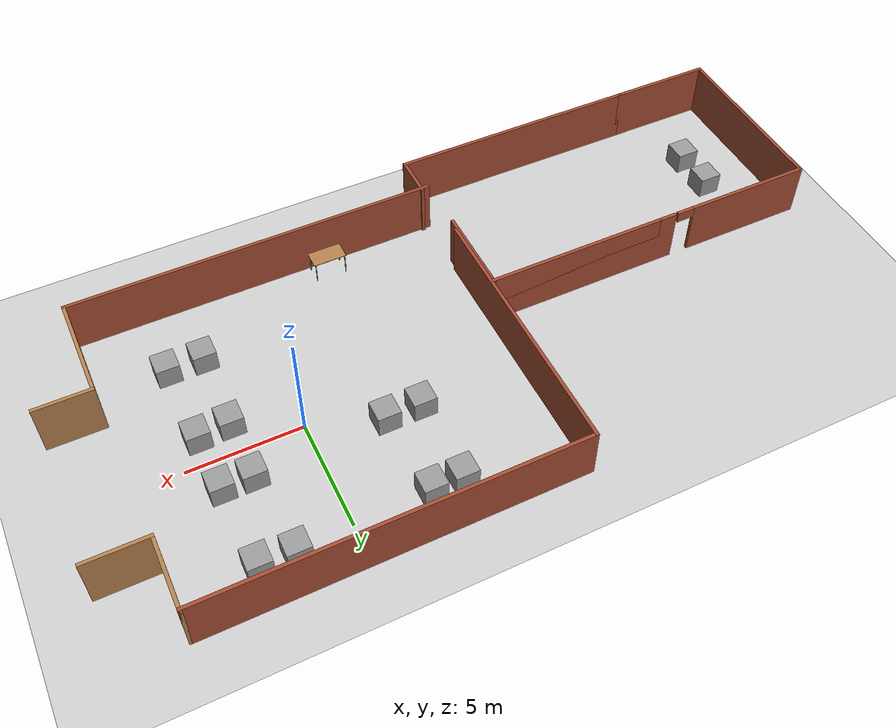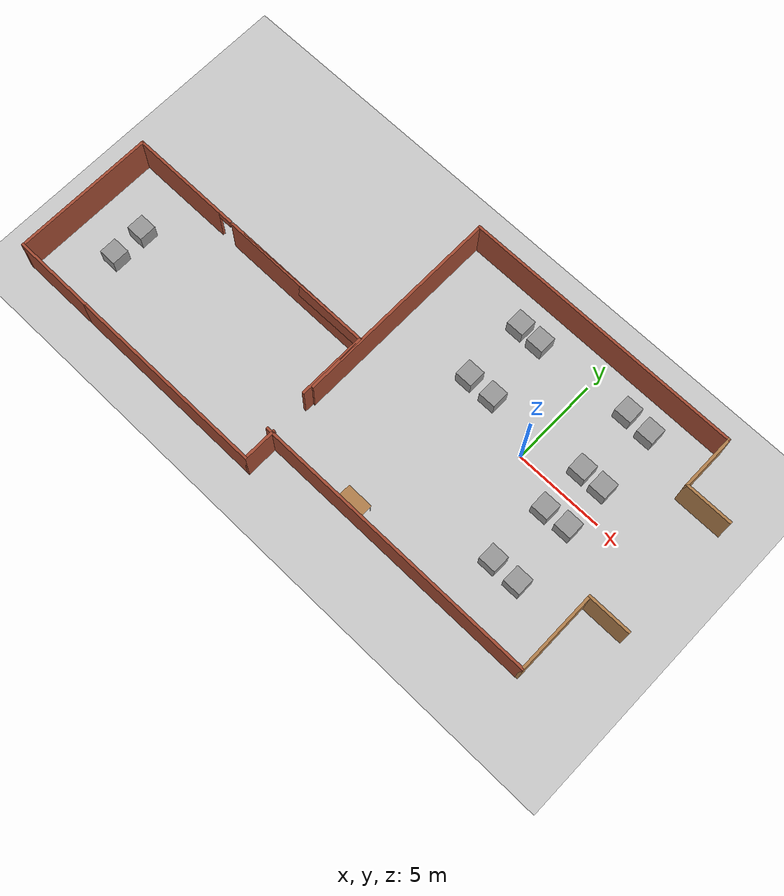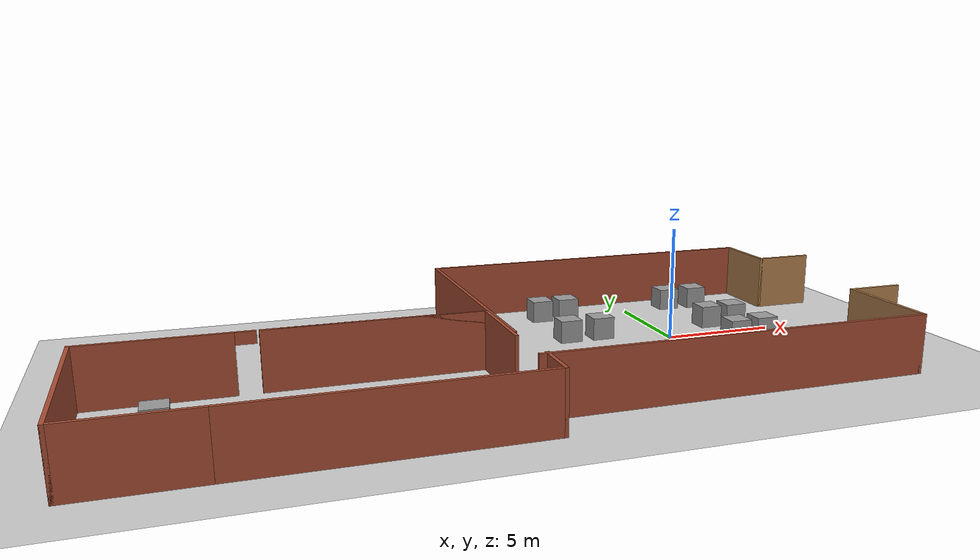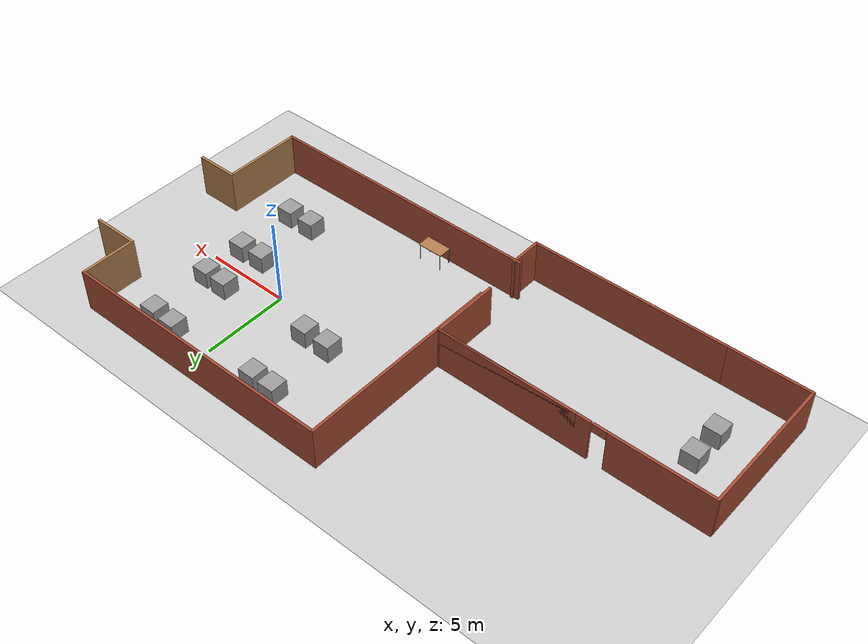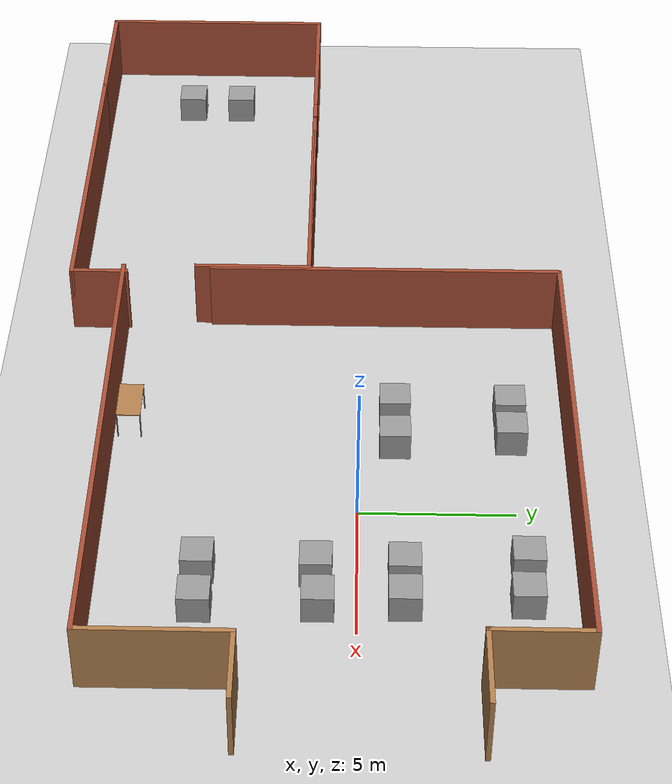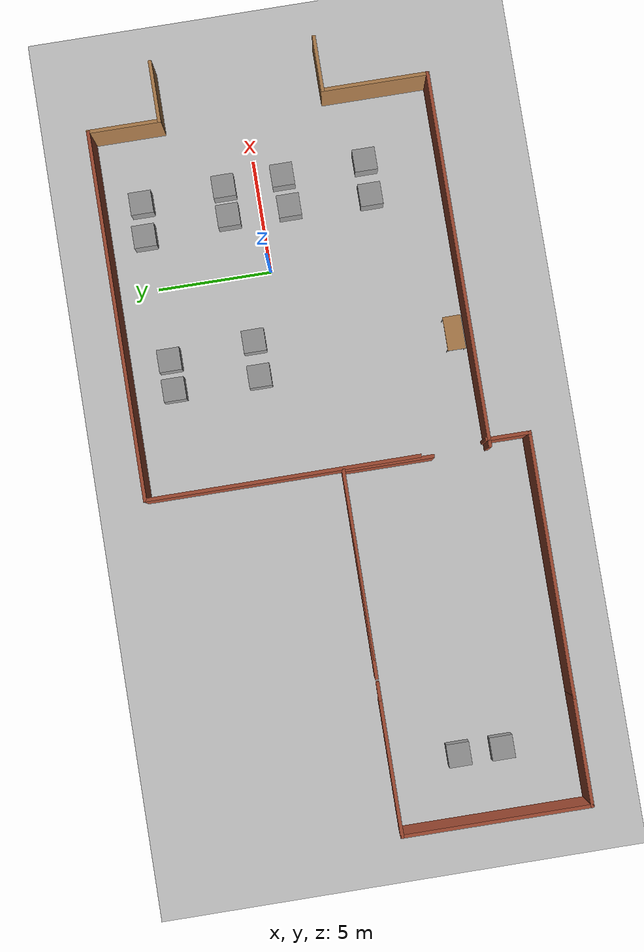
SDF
<sdf version="1.7">
 <world name="default">
  <light name="sun" type="directional">
   <pose>0 0 10 0 -0 0</pose>
   <diffuse>0.8 0.8 0.8 1</diffuse>
   <specular>0.2 0.2 0.2 1</specular>
   <attenuation>
    <range>1000</range>
    <constant>0.9</constant>
    <linear>0.01</linear>
    <quadratic>0.001</quadratic>
   </attenuation>
   <direction>-0.5 0.1 -0.9</direction>
   <spot><inner_angle>0</inner_angle><outer_angle>0</outer_angle><falloff>0</falloff></spot>
  </light>
  <model name="ground_plane">
   <static>1</static>
   <link name="link">
    <collision name="collision">
     <geometry><plane><normal>0 0 1</normal><size>100 100</size></plane></geometry>
     <surface>
      <contact><collide_bitmask>65535</collide_bitmask></contact>
      <friction><ode><mu>100</mu><mu2>50</mu2></ode></friction>
     </surface>
    </collision>
    <visual name="visual">
     <cast_shadows>0</cast_shadows>
     <geometry><plane><normal>0 0 1</normal><size>100 100</size></plane></geometry>
     <material>
      <script><uri>file://media/materials/scripts/gazebo.material</uri><name>Gazebo/Grey</name></script>
     </material>
    </visual>
   </link>
  </model>
  <gravity>0 0 -9.8</gravity>
  <magnetic_field>6e-06 2.3e-05 -4.2e-05</magnetic_field>
  <atmosphere type="adiabatic"/>
  <physics type="ode">
   <max_step_size>0.001</max_step_size>
   <real_time_factor>1</real_time_factor>
   <real_time_update_rate>1000</real_time_update_rate>
  </physics>
  <scene><ambient>0.4 0.4 0.4 1</ambient><background>0.7 0.7 0.7 1</background><shadows>1</shadows></scene>
  <audio><device>default</device></audio>
  <spherical_coordinates>
   <surface_model>EARTH_WGS84</surface_model>
   <latitude_deg>0</latitude_deg>
   <longitude_deg>0</longitude_deg>
   <elevation>0</elevation>
   <heading_deg>0</heading_deg>
  </spherical_coordinates>
  <model name="resturent_new">
   <pose>0.12676 -0.640966 0 0 -0 0</pose>
   <link name="Wall_24">
    <collision name="Wall_24_Collision">
     <geometry><box><size>16.5 0.15 2.5</size></box></geometry>
     <pose>0 0 1.25 0 -0 0</pose>
    </collision>
    <visual name="Wall_24_Visual">
     <pose>0 0 1.25 0 -0 0</pose>
     <geometry><box><size>16.5 0.15 2.5</size></box></geometry>
     <material>
      <script><uri>file://media/materials/scripts/gazebo.material</uri><name>Gazebo/Bricks</name></script>
      <ambient>1 1 1 1</ambient>
     </material>
     <meta><layer>0</layer></meta>
    </visual>
    <pose>-1.19813 -7.44006 0 0 -0 0</pose>
   </link>
   <link name="Wall_25">
    <collision name="Wall_25_Collision">
     <geometry><box><size>4.75 0.15 2.5</size></box></geometry>
     <pose>0 0 1.25 0 -0 0</pose>
    </collision>
    <visual name="Wall_25_Visual">
     <pose>0 0 1.25 0 -0 0</pose>
     <geometry><box><size>4.75 0.15 2.5</size></box></geometry>
     <material>
      <script><uri>file://media/materials/scripts/gazebo.material</uri><name>Gazebo/Wood</name></script>
      <ambient>1 1 1 1</ambient>
     </material>
     <meta><layer>0</layer></meta>
    </visual>
    <pose>6.97687 -5.14006 0 0 -0 1.5708</pose>
   </link>
   <link name="Wall_26">
    <collision name="Wall_26_Collision">
     <geometry><box><size>2.5 0.15 2.5</size></box></geometry>
     <pose>0 0 1.25 0 -0 0</pose>
    </collision>
    <visual name="Wall_26_Visual">
     <pose>0 0 1.25 0 -0 0</pose>
     <geometry><box><size>2.5 0.15 2.5</size></box></geometry>
     <material>
      <script><uri>file://media/materials/scripts/gazebo.material</uri><name>Gazebo/Wood</name></script>
      <ambient>1 1 1 1</ambient>
     </material>
     <meta><layer>0</layer></meta>
    </visual>
    <pose>8.15187 -2.84005 0 0 -0 0</pose>
   </link>
   <link name="Wall_28">
    <collision name="Wall_28_Collision">
     <geometry><box><size>12 0.15 2.5</size></box></geometry>
     <pose>0 0 1.25 0 -0 0</pose>
    </collision>
    <visual name="Wall_28_Visual">
     <pose>0 0 1.25 0 -0 0</pose>
     <geometry><box><size>12 0.15 2.5</size></box></geometry>
     <material>
      <script><uri>file://media/materials/scripts/gazebo.material</uri><name>Gazebo/Bricks</name></script>
      <ambient>1 1 1 1</ambient>
     </material>
     <meta><layer>0</layer></meta>
    </visual>
    <pose>-9.32687 1.51505 0 0 -0 1.5708</pose>
   </link>
   <link name="Wall_29">
    <collision name="Wall_29_Collision">
     <geometry><box><size>16.25 0.15 2.5</size></box></geometry>
     <pose>0 0 1.25 0 -0 0</pose>
    </collision>
    <visual name="Wall_29_Visual">
     <pose>0 0 1.25 0 -0 0</pose>
     <geometry><box><size>16.25 0.15 2.5</size></box></geometry>
     <material>
      <script><uri>file://media/materials/scripts/gazebo.material</uri><name>Gazebo/Bricks</name></script>
      <ambient>1 1 1 1</ambient>
     </material>
     <meta><layer>0</layer></meta>
    </visual>
    <pose>-1.27687 7.44006 0 0 -0 0</pose>
   </link>
   <link name="Wall_30">
    <collision name="Wall_30_Collision">
     <geometry><box><size>3.25 0.15 2.5</size></box></geometry>
     <pose>0 0 1.25 0 -0 0</pose>
    </collision>
    <visual name="Wall_30_Visual">
     <pose>0 0 1.25 0 -0 0</pose>
     <geometry><box><size>3.25 0.15 2.5</size></box></geometry>
     <material>
      <script><uri>file://media/materials/scripts/gazebo.material</uri><name>Gazebo/Wood</name></script>
      <ambient>1 1 1 1</ambient>
     </material>
     <meta><layer>0</layer></meta>
    </visual>
    <pose>6.77313 5.89006 0 0 -0 -1.5708</pose>
   </link>
   <link name="Wall_31">
    <collision name="Wall_31_Collision">
     <geometry><box><size>2.75 0.15 2.5</size></box></geometry>
     <pose>0 0 1.25 0 -0 0</pose>
    </collision>
    <visual name="Wall_31_Visual">
     <pose>0 0 1.25 0 -0 0</pose>
     <geometry><box><size>2.75 0.15 2.5</size></box></geometry>
     <material>
      <script><uri>file://media/materials/scripts/gazebo.material</uri><name>Gazebo/Wood</name></script>
      <ambient>1 1 1 1</ambient>
     </material>
     <meta><layer>0</layer></meta>
    </visual>
    <pose>8.07313 4.34006 0 0 -0 0</pose>
   </link>
   <static>1</static>
  </model>
  <model name="cafe_new">
   <pose>-16.9269 -5.77203 0 0 -0 3.13985</pose>
   <link name="Wall_1">
    <collision name="Wall_1_Collision">
     <geometry><box><size>2 0.15 2.5</size></box></geometry>
     <pose>0 0 1.25 0 -0 0</pose>
    </collision>
    <visual name="Wall_1_Visual">
     <pose>0 0 1.25 0 -0 0</pose>
     <geometry><box><size>2 0.15 2.5</size></box></geometry>
     <material>
      <script><uri>file://media/materials/scripts/gazebo.material</uri><name>Gazebo/Bricks</name></script>
      <ambient>1 1 1 1</ambient>
     </material>
     <meta><layer>0</layer></meta>
    </visual>
    <pose>-7.975 3.125 0 0 -0 1.5708</pose>
   </link>
   <link name="Wall_2">
    <collision name="Wall_2_Collision">
     <geometry><box><size>11.5 0.15 2.5</size></box></geometry>
     <pose>0 0 1.25 0 -0 0</pose>
    </collision>
    <visual name="Wall_2_Visual">
     <pose>0 0 1.25 0 -0 0</pose>
     <geometry><box><size>11.5 0.15 2.5</size></box></geometry>
     <material>
      <script><uri>file://media/materials/scripts/gazebo.material</uri><name>Gazebo/Bricks</name></script>
      <ambient>1 1 1 1</ambient>
     </material>
     <meta><layer>0</layer></meta>
    </visual>
    <pose>-2.3 4.05 0 0 -0 0</pose>
   </link>
   <link name="Wall_3">
    <collision name="Wall_3_Collision">
     <geometry><box><size>4.75 0.15 2.5</size></box></geometry>
     <pose>0 0 1.25 0 -0 0</pose>
    </collision>
    <visual name="Wall_3_Visual">
     <pose>0 0 1.25 0 -0 0</pose>
     <geometry><box><size>4.75 0.15 2.5</size></box></geometry>
     <material>
      <script><uri>file://media/materials/scripts/gazebo.material</uri><name>Gazebo/Bricks</name></script>
      <ambient>1 1 1 1</ambient>
     </material>
     <meta><layer>0</layer></meta>
    </visual>
    <pose>5.675 4.05 0 0 -0 0</pose>
   </link>
   <link name="Wall_4">
    <collision name="Wall_4_Collision">
     <geometry><box><size>8.25 0.15 2.5</size></box></geometry>
     <pose>0 0 1.25 0 -0 0</pose>
    </collision>
    <visual name="Wall_4_Visual">
     <pose>0 0 1.25 0 -0 0</pose>
     <geometry><box><size>8.25 0.15 2.5</size></box></geometry>
     <material>
      <script><uri>file://media/materials/scripts/gazebo.material</uri><name>Gazebo/Bricks</name></script>
      <ambient>1 1 1 1</ambient>
     </material>
     <meta><layer>0</layer></meta>
    </visual>
    <pose>7.975 -0 0 0 -0 -1.5708</pose>
   </link>
   <link name="Wall_5">
    <pose>0.175 -4.05 0 0 -0 3.14159</pose>
    <visual name="Wall_5_Visual_0">
     <pose>-4.96927 0 1.25 0 -0 0</pose>
     <geometry><box><size>5.81146 0.15 2.5</size></box></geometry>
     <material>
      <script><uri>file://media/materials/scripts/gazebo.material</uri><name>Gazebo/Bricks</name></script>
      <ambient>1 1 1 1</ambient>
     </material>
     <meta><layer>0</layer></meta>
    </visual>
    <collision name="Wall_5_Collision_0">
     <geometry><box><size>5.81146 0.15 2.5</size></box></geometry>
     <pose>-4.96927 0 1.25 0 -0 0</pose>
    </collision>
    <visual name="Wall_5_Visual_1">
     <pose>3.35573 0 1.25 0 -0 0</pose>
     <geometry><box><size>9.03854 0.15 2.5</size></box></geometry>
     <material>
      <script><uri>file://media/materials/scripts/gazebo.material</uri><name>Gazebo/Bricks</name></script>
      <ambient>1 1 1 1</ambient>
     </material>
     <meta><layer>0</layer></meta>
    </visual>
    <collision name="Wall_5_Collision_1">
     <geometry><box><size>9.03854 0.15 2.5</size></box></geometry>
     <pose>3.35573 0 1.25 0 -0 0</pose>
    </collision>
    <visual name="Wall_5_Visual_2">
     <pose>3.76029 0 1.25 0 -0 0</pose>
     <geometry><box><size>8.22943 0.15 2.5</size></box></geometry>
     <material>
      <script><uri>file://media/materials/scripts/gazebo.material</uri><name>Gazebo/Bricks</name></script>
      <ambient>1 1 1 1</ambient>
     </material>
     <meta><layer>0</layer></meta>
    </visual>
    <collision name="Wall_5_Collision_2">
     <geometry><box><size>8.22943 0.15 2.5</size></box></geometry>
     <pose>3.76029 0 1.25 0 -0 0</pose>
    </collision>
    <visual name="Wall_5_Visual_3">
     <pose>-1.65898 0 2.25 0 -0 0</pose>
     <geometry><box><size>0.809112 0.15 0.5</size></box></geometry>
     <material>
      <script><uri>file://media/materials/scripts/gazebo.material</uri><name>Gazebo/Bricks</name></script>
      <ambient>1 1 1 1</ambient>
     </material>
     <meta><layer>0</layer></meta>
    </visual>
    <collision name="Wall_5_Collision_3">
     <geometry><box><size>0.809112 0.15 0.5</size></box></geometry>
     <pose>-1.65898 0 2.25 0 -0 0</pose>
    </collision>
   </link>
   <link name="Wall_6">
    <collision name="Wall_6_Collision">
     <geometry><box><size>4 0.15 2.5</size></box></geometry>
     <pose>0 0 1.25 0 -0 0</pose>
    </collision>
    <visual name="Wall_6_Visual">
     <pose>0 0 1.25 0 -0 0</pose>
     <geometry><box><size>4 0.15 2.5</size></box></geometry>
     <material>
      <script><uri>file://media/materials/scripts/gazebo.material</uri><name>Gazebo/Bricks</name></script>
      <ambient>1 1 1 1</ambient>
     </material>
     <meta><layer>0</layer></meta>
    </visual>
    <pose>-7.625 -2.125 0 0 -0 1.5708</pose>
   </link>
   <static>1</static>
  </model>
  <model name="table">
   <static>1</static>
   <link name="link">
    <collision name="surface">
     <pose>0 0 1 0 -0 0</pose>
     <geometry><box><size>1.5 0.8 0.03</size></box></geometry>
     <surface><friction><ode><mu>0.6</mu><mu2>0.6</mu2></ode></friction></surface>
    </collision>
    <visual name="visual1">
     <pose>0 0 1 0 -0 0</pose>
     <geometry><box><size>1.5 0.8 0.03</size></box></geometry>
     <material>
      <script><uri>file://media/materials/scripts/gazebo.material</uri><name>Gazebo/Wood</name></script>
     </material>
    </visual>
    <collision name="front_left_leg">
     <pose>0.68 0.38 0.5 0 -0 0</pose>
     <geometry><cylinder><radius>0.02</radius><length>1</length></cylinder></geometry>
    </collision>
    <visual name="front_left_leg">
     <pose>0.68 0.38 0.5 0 -0 0</pose>
     <geometry><cylinder><radius>0.02</radius><length>1</length></cylinder></geometry>
     <material>
      <script><uri>file://media/materials/scripts/gazebo.material</uri><name>Gazebo/Grey</name></script>
     </material>
    </visual>
    <collision name="front_right_leg">
     <pose>0.68 -0.38 0.5 0 -0 0</pose>
     <geometry><cylinder><radius>0.02</radius><length>1</length></cylinder></geometry>
    </collision>
    <visual name="front_right_leg">
     <pose>0.68 -0.38 0.5 0 -0 0</pose>
     <geometry><cylinder><radius>0.02</radius><length>1</length></cylinder></geometry>
     <material>
      <script><uri>file://media/materials/scripts/gazebo.material</uri><name>Gazebo/Grey</name></script>
     </material>
    </visual>
    <collision name="back_right_leg">
     <pose>-0.68 -0.38 0.5 0 -0 0</pose>
     <geometry><cylinder><radius>0.02</radius><length>1</length></cylinder></geometry>
    </collision>
    <visual name="back_right_leg">
     <pose>-0.68 -0.38 0.5 0 -0 0</pose>
     <geometry><cylinder><radius>0.02</radius><length>1</length></cylinder></geometry>
     <material>
      <script><uri>file://media/materials/scripts/gazebo.material</uri><name>Gazebo/Grey</name></script>
     </material>
    </visual>
    <collision name="back_left_leg">
     <pose>-0.68 0.38 0.5 0 -0 0</pose>
     <geometry><cylinder><radius>0.02</radius><length>1</length></cylinder></geometry>
    </collision>
    <visual name="back_left_leg">
     <pose>-0.68 0.38 0.5 0 -0 0</pose>
     <geometry><cylinder><radius>0.02</radius><length>1</length></cylinder></geometry>
     <material>
      <script><uri>file://media/materials/scripts/gazebo.material</uri><name>Gazebo/Grey</name></script>
     </material>
    </visual>
   </link>
   <pose>-4.06151 -7.48384 0 0 -0 0</pose>
  </model>
  <model name="unit_box">
   <pose>3.80687 5.13689 0.499995 -1e-05 -0 -0</pose>
   <link name="link">
    <inertial>
     <mass>1</mass>
     <inertia>
      <ixx>0.166667</ixx>
      <ixy>0</ixy>
      <ixz>0</ixz>
      <iyy>0.166667</iyy>
      <iyz>0</iyz>
      <izz>0.166667</izz>
     </inertia>
    </inertial>
    <collision name="collision"><geometry><box><size>1 1 1</size></box></geometry></collision>
    <visual name="visual">
     <geometry><box><size>1 1 1</size></box></geometry>
     <material>
      <script><name>Gazebo/Grey</name><uri>file://media/materials/scripts/gazebo.material</uri></script>
     </material>
    </visual>
   </link>
  </model>
  <model name="unit_box_0">
   <pose>2.33189 5.21919 0.499995 0 1e-05 0</pose>
   <link name="link">
    <inertial>
     <mass>1</mass>
     <inertia>
      <ixx>0.166667</ixx>
      <ixy>0</ixy>
      <ixz>0</ixz>
      <iyy>0.166667</iyy>
      <iyz>0</iyz>
      <izz>0.166667</izz>
     </inertia>
    </inertial>
    <collision name="collision"><geometry><box><size>1 1 1</size></box></geometry></collision>
    <visual name="visual">
     <geometry><box><size>1 1 1</size></box></geometry>
     <material>
      <script><name>Gazebo/Grey</name><uri>file://media/materials/scripts/gazebo.material</uri></script>
     </material>
    </visual>
   </link>
  </model>
  <model name="unit_box_1">
   <pose>-3.24153 4.97372 0.499995 -1e-05 -0 -0</pose>
   <link name="link">
    <inertial>
     <mass>1</mass>
     <inertia>
      <ixx>0.166667</ixx>
      <ixy>0</ixy>
      <ixz>0</ixz>
      <iyy>0.166667</iyy>
      <iyz>0</iyz>
      <izz>0.166667</izz>
     </inertia>
    </inertial>
    <collision name="collision"><geometry><box><size>1 1 1</size></box></geometry></collision>
    <visual name="visual">
     <geometry><box><size>1 1 1</size></box></geometry>
     <material>
      <script><name>Gazebo/Grey</name><uri>file://media/materials/scripts/gazebo.material</uri></script>
     </material>
    </visual>
   </link>
  </model>
  <model name="unit_box_2">
   <pose>-4.55316 4.97372 0.499995 0 1e-05 0</pose>
   <link name="link">
    <inertial>
     <mass>1</mass>
     <inertia>
      <ixx>0.166667</ixx>
      <ixy>0</ixy>
      <ixz>0</ixz>
      <iyy>0.166667</iyy>
      <iyz>0</iyz>
      <izz>0.166667</izz>
     </inertia>
    </inertial>
    <collision name="collision"><geometry><box><size>1 1 1</size></box></geometry></collision>
    <visual name="visual">
     <geometry><box><size>1 1 1</size></box></geometry>
     <material>
      <script><name>Gazebo/Grey</name><uri>file://media/materials/scripts/gazebo.material</uri></script>
     </material>
    </visual>
   </link>
  </model>
  <model name="unit_box_3">
   <pose>3.97094 1.44979 0.499995 -1e-05 -0 -0</pose>
   <link name="link">
    <inertial>
     <mass>1</mass>
     <inertia>
      <ixx>0.166667</ixx>
      <ixy>0</ixy>
      <ixz>0</ixz>
      <iyy>0.166667</iyy>
      <iyz>0</iyz>
      <izz>0.166667</izz>
     </inertia>
    </inertial>
    <collision name="collision"><geometry><box><size>1 1 1</size></box></geometry></collision>
    <visual name="visual">
     <geometry><box><size>1 1 1</size></box></geometry>
     <material>
      <script><name>Gazebo/Grey</name><uri>file://media/materials/scripts/gazebo.material</uri></script>
     </material>
    </visual>
   </link>
  </model>
  <model name="unit_box_4">
   <pose>2.6593 1.44979 0.499995 0 1e-05 0</pose>
   <link name="link">
    <inertial>
     <mass>1</mass>
     <inertia>
      <ixx>0.166667</ixx>
      <ixy>0</ixy>
      <ixz>0</ixz>
      <iyy>0.166667</iyy>
      <iyz>0</iyz>
      <izz>0.166667</izz>
     </inertia>
    </inertial>
    <collision name="collision"><geometry><box><size>1 1 1</size></box></geometry></collision>
    <visual name="visual">
     <geometry><box><size>1 1 1</size></box></geometry>
     <material>
      <script><name>Gazebo/Grey</name><uri>file://media/materials/scripts/gazebo.material</uri></script>
     </material>
    </visual>
   </link>
  </model>
  <model name="unit_box_5">
   <pose>4.0527 -1.17311 0.499995 -1e-05 -0 -0</pose>
   <link name="link">
    <inertial>
     <mass>1</mass>
     <inertia>
      <ixx>0.166667</ixx>
      <ixy>0</ixy>
      <ixz>0</ixz>
      <iyy>0.166667</iyy>
      <iyz>0</iyz>
      <izz>0.166667</izz>
     </inertia>
    </inertial>
    <collision name="collision"><geometry><box><size>1 1 1</size></box></geometry></collision>
    <visual name="visual">
     <geometry><box><size>1 1 1</size></box></geometry>
     <material>
      <script><name>Gazebo/Grey</name><uri>file://media/materials/scripts/gazebo.material</uri></script>
     </material>
    </visual>
   </link>
  </model>
  <model name="unit_box_6">
   <pose>2.6593 -1.2547 0.499995 0 1e-05 0</pose>
   <link name="link">
    <inertial>
     <mass>1</mass>
     <inertia>
      <ixx>0.166667</ixx>
      <ixy>0</ixy>
      <ixz>0</ixz>
      <iyy>0.166667</iyy>
      <iyz>0</iyz>
      <izz>0.166667</izz>
     </inertia>
    </inertial>
    <collision name="collision"><geometry><box><size>1 1 1</size></box></geometry></collision>
    <visual name="visual">
     <geometry><box><size>1 1 1</size></box></geometry>
     <material>
      <script><name>Gazebo/Grey</name><uri>file://media/materials/scripts/gazebo.material</uri></script>
     </material>
    </visual>
   </link>
  </model>
  <model name="unit_box_7">
   <pose>4.13464 -4.86238 0.499995 -1e-05 -0 -0</pose>
   <link name="link">
    <inertial>
     <mass>1</mass>
     <inertia>
      <ixx>0.166667</ixx>
      <ixy>0</ixy>
      <ixz>0</ixz>
      <iyy>0.166667</iyy>
      <iyz>0</iyz>
      <izz>0.166667</izz>
     </inertia>
    </inertial>
    <collision name="collision"><geometry><box><size>1 1 1</size></box></geometry></collision>
    <visual name="visual">
     <geometry><box><size>1 1 1</size></box></geometry>
     <material>
      <script><name>Gazebo/Grey</name><uri>file://media/materials/scripts/gazebo.material</uri></script>
     </material>
    </visual>
   </link>
  </model>
  <model name="unit_box_8">
   <pose>2.57773 -4.86238 0.499995 0 1e-05 0</pose>
   <link name="link">
    <inertial>
     <mass>1</mass>
     <inertia>
      <ixx>0.166667</ixx>
      <ixy>0</ixy>
      <ixz>0</ixz>
      <iyy>0.166667</iyy>
      <iyz>0</iyz>
      <izz>0.166667</izz>
     </inertia>
    </inertial>
    <collision name="collision"><geometry><box><size>1 1 1</size></box></geometry></collision>
    <visual name="visual">
     <geometry><box><size>1 1 1</size></box></geometry>
     <material>
      <script><name>Gazebo/Grey</name><uri>file://media/materials/scripts/gazebo.material</uri></script>
     </material>
    </visual>
   </link>
  </model>
  <model name="unit_box_9">
   <pose>-2.9957 1.20287 0.499995 -1e-05 -0 -0</pose>
   <link name="link">
    <inertial>
     <mass>1</mass>
     <inertia>
      <ixx>0.166667</ixx>
      <ixy>0</ixy>
      <ixz>0</ixz>
      <iyy>0.166667</iyy>
      <iyz>0</iyz>
      <izz>0.166667</izz>
     </inertia>
    </inertial>
    <collision name="collision"><geometry><box><size>1 1 1</size></box></geometry></collision>
    <visual name="visual">
     <geometry><box><size>1 1 1</size></box></geometry>
     <material>
      <script><name>Gazebo/Grey</name><uri>file://media/materials/scripts/gazebo.material</uri></script>
     </material>
    </visual>
   </link>
  </model>
  <model name="unit_box_10">
   <pose>-4.55316 1.20287 0.499995 0 1e-05 0</pose>
   <link name="link">
    <inertial>
     <mass>1</mass>
     <inertia>
      <ixx>0.166667</ixx>
      <ixy>0</ixy>
      <ixz>0</ixz>
      <iyy>0.166667</iyy>
      <iyz>0</iyz>
      <izz>0.166667</izz>
     </inertia>
    </inertial>
    <collision name="collision"><geometry><box><size>1 1 1</size></box></geometry></collision>
    <visual name="visual">
     <geometry><box><size>1 1 1</size></box></geometry>
     <material>
      <script><name>Gazebo/Grey</name><uri>file://media/materials/scripts/gazebo.material</uri></script>
     </material>
    </visual>
   </link>
  </model>
  <model name="unit_box_11">
   <pose>-22.0927 -4.69777 0.499995 -1e-05 -0 0</pose>
   <link name="link">
    <inertial>
     <mass>1</mass>
     <inertia>
      <ixx>0.166667</ixx>
      <ixy>0</ixy>
      <ixz>0</ixz>
      <iyy>0.166667</iyy>
      <iyz>0</iyz>
      <izz>0.166667</izz>
     </inertia>
    </inertial>
    <collision name="collision"><geometry><box><size>1 1 1</size></box></geometry></collision>
    <visual name="visual">
     <geometry><box><size>1 1 1</size></box></geometry>
     <material>
      <script><name>Gazebo/Grey</name><uri>file://media/materials/scripts/gazebo.material</uri></script>
     </material>
    </visual>
   </link>
  </model>
  <model name="unit_box_12">
   <pose>-22.0927 -6.5821 0.5 0 -0 0</pose>
   <link name="link">
    <inertial>
     <mass>1</mass>
     <inertia>
      <ixx>0.166667</ixx>
      <ixy>0</ixy>
      <ixz>0</ixz>
      <iyy>0.166667</iyy>
      <iyz>0</iyz>
      <izz>0.166667</izz>
     </inertia>
    </inertial>
    <collision name="collision"><geometry><box><size>1 1 1</size></box></geometry></collision>
    <visual name="visual">
     <geometry><box><size>1 1 1</size></box></geometry>
     <material>
      <script><name>Gazebo/Grey</name><uri>file://media/materials/scripts/gazebo.material</uri></script>
     </material>
    </visual>
   </link>
  </model>
 </world>
</sdf>
